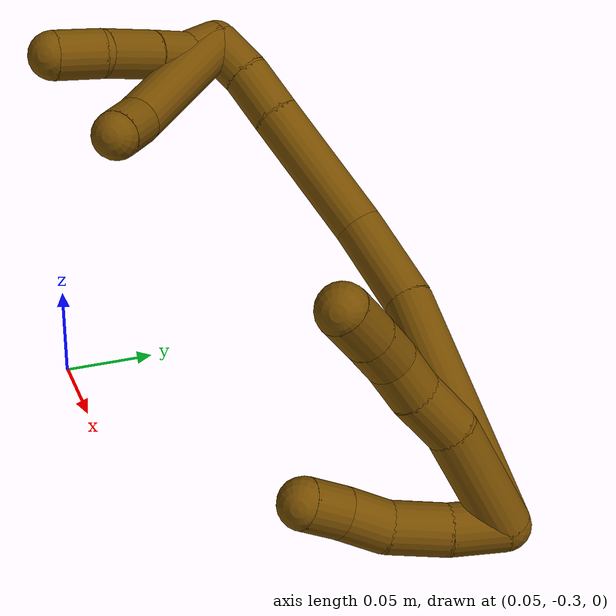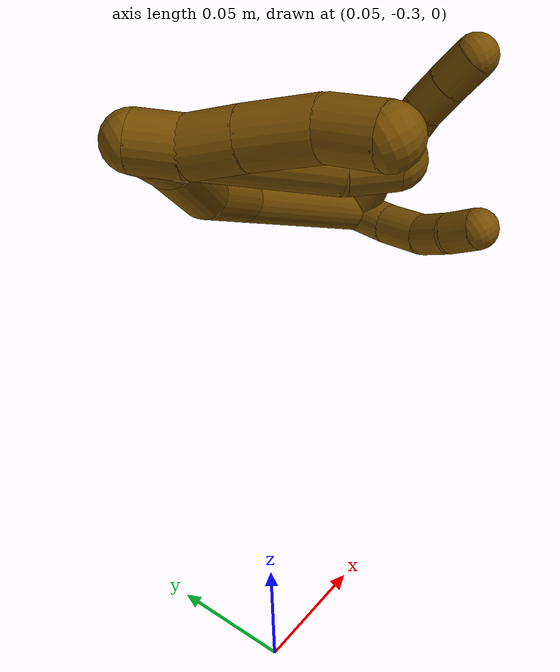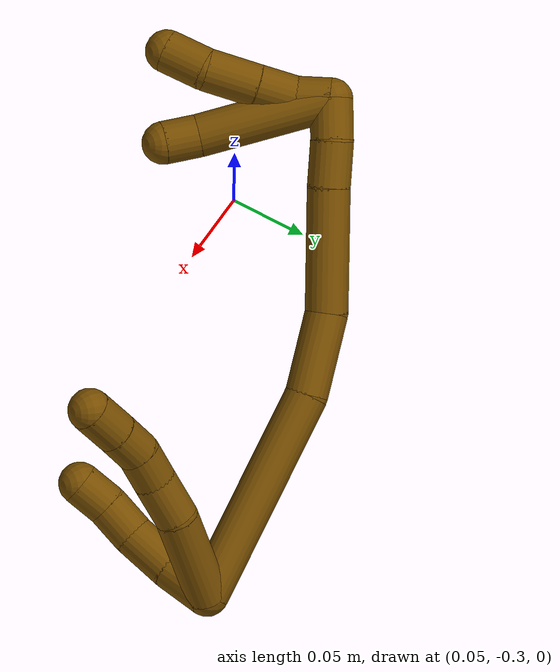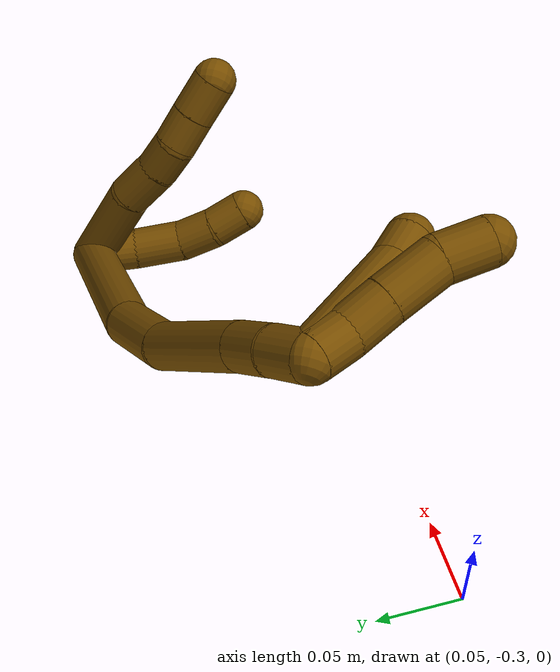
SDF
<sdf version="1.7">
 <world name="default">
  <model name="12">
   <static>0</static>
   <link name="12">
    <collision name="collision-cylinder-e_1_2_8">
     <pose>-0.02649 -0.002079 0.012284 0.167688 -1.13117 -0.10659</pose>
     <geometry><cylinder><radius>0.0125</radius><length>0.058547</length></cylinder></geometry>
     <surface>
      <friction><ode><mu>1.16</mu><mu2>1.16</mu2><slip1>0</slip1><slip2>0</slip2></ode></friction>
      <contact><ode><kp>1e+06</kp><kd>1</kd><max_vel>0</max_vel><min_depth>0.001</min_depth></ode></contact>
     </surface>
    </collision>
    <visual name="visual-cylinder-e_1_2_8">
     <pose>-0.02649 -0.002079 0.012284 0.167688 -1.13117 -0.10659</pose>
     <geometry><cylinder><radius>0.0125</radius><length>0.058547</length></cylinder></geometry>
     <material><ambient>0.466667 0.301961 0 1</ambient></material>
    </visual>
    <collision name="collision-cylinder-e_2_8_9">
     <pose>-0.064206 -0.008018 0.030923 0.545765 -0.985883 -0.298436</pose>
     <geometry><cylinder><radius>0.0125</radius><length>0.02693</length></cylinder></geometry>
     <surface>
      <friction><ode><mu>1.16</mu><mu2>1.16</mu2><slip1>0</slip1><slip2>0</slip2></ode></friction>
      <contact><ode><kp>1e+06</kp><kd>1</kd><max_vel>0</max_vel><min_depth>0.001</min_depth></ode></contact>
     </surface>
    </collision>
    <visual name="visual-cylinder-e_2_8_9">
     <pose>-0.064206 -0.008018 0.030923 0.545765 -0.985883 -0.298436</pose>
     <geometry><cylinder><radius>0.0125</radius><length>0.02693</length></cylinder></geometry>
     <material><ambient>0.466667 0.301961 0 1</ambient></material>
    </visual>
    <collision name="collision-cylinder-e_3_9_10">
     <pose>-0.084307 -0.013383 0.042688 0.271514 -1.00655 -0.150127</pose>
     <geometry><cylinder><radius>0.0125</radius><length>0.021005</length></cylinder></geometry>
     <surface>
      <friction><ode><mu>1.16</mu><mu2>1.16</mu2><slip1>0</slip1><slip2>0</slip2></ode></friction>
      <contact><ode><kp>1e+06</kp><kd>1</kd><max_vel>0</max_vel><min_depth>0.001</min_depth></ode></contact>
     </surface>
    </collision>
    <visual name="visual-cylinder-e_3_9_10">
     <pose>-0.084307 -0.013383 0.042688 0.271514 -1.00655 -0.150127</pose>
     <geometry><cylinder><radius>0.0125</radius><length>0.021005</length></cylinder></geometry>
     <material><ambient>0.466667 0.301961 0 1</ambient></material>
    </visual>
    <collision name="collision-cylinder-e_4_10_11">
     <pose>-0.100204 -0.01619 0.05541 0.176092 -0.757421 -0.070223</pose>
     <geometry><cylinder><radius>0.0125</radius><length>0.020441</length></cylinder></geometry>
     <surface>
      <friction><ode><mu>1.16</mu><mu2>1.16</mu2><slip1>0</slip1><slip2>0</slip2></ode></friction>
      <contact><ode><kp>1e+06</kp><kd>1</kd><max_vel>0</max_vel><min_depth>0.001</min_depth></ode></contact>
     </surface>
    </collision>
    <visual name="visual-cylinder-e_4_10_11">
     <pose>-0.100204 -0.01619 0.05541 0.176092 -0.757421 -0.070223</pose>
     <geometry><cylinder><radius>0.0125</radius><length>0.020441</length></cylinder></geometry>
     <material><ambient>0.466667 0.301961 0 1</ambient></material>
    </visual>
    <collision name="collision-cylinder-e_5_11_6">
     <pose>-0.114942 -0.019164 0.071136 0.196231 -0.732488 -0.075471</pose>
     <geometry><cylinder><radius>0.0125</radius><length>0.023077</length></cylinder></geometry>
     <surface>
      <friction><ode><mu>1.16</mu><mu2>1.16</mu2><slip1>0</slip1><slip2>0</slip2></ode></friction>
      <contact><ode><kp>1e+06</kp><kd>1</kd><max_vel>0</max_vel><min_depth>0.001</min_depth></ode></contact>
     </surface>
    </collision>
    <visual name="visual-cylinder-e_5_11_6">
     <pose>-0.114942 -0.019164 0.071136 0.196231 -0.732488 -0.075471</pose>
     <geometry><cylinder><radius>0.0125</radius><length>0.023077</length></cylinder></geometry>
     <material><ambient>0.466667 0.301961 0 1</ambient></material>
    </visual>
    <collision name="collision-cylinder-e_1_2_12">
     <pose>-0.003889 -0.012055 0.005251 1.15996 -0.287542 -0.189123</pose>
     <geometry><cylinder><radius>0.0125</radius><length>0.027423</length></cylinder></geometry>
     <surface>
      <friction><ode><mu>1.16</mu><mu2>1.16</mu2><slip1>0</slip1><slip2>0</slip2></ode></friction>
      <contact><ode><kp>1e+06</kp><kd>1</kd><max_vel>0</max_vel><min_depth>0.001</min_depth></ode></contact>
     </surface>
    </collision>
    <visual name="visual-cylinder-e_1_2_12">
     <pose>-0.003889 -0.012055 0.005251 1.15996 -0.287542 -0.189123</pose>
     <geometry><cylinder><radius>0.0125</radius><length>0.027423</length></cylinder></geometry>
     <material><ambient>0.466667 0.301961 0 1</ambient></material>
    </visual>
    <collision name="collision-cylinder-e_2_12_13">
     <pose>-0.013782 -0.036179 0.016095 1.13686 -0.424012 -0.27326</pose>
     <geometry><cylinder><radius>0.0125</radius><length>0.02919</length></cylinder></geometry>
     <surface>
      <friction><ode><mu>1.16</mu><mu2>1.16</mu2><slip1>0</slip1><slip2>0</slip2></ode></friction>
      <contact><ode><kp>1e+06</kp><kd>1</kd><max_vel>0</max_vel><min_depth>0.001</min_depth></ode></contact>
     </surface>
    </collision>
    <visual name="visual-cylinder-e_2_12_13">
     <pose>-0.013782 -0.036179 0.016095 1.13686 -0.424012 -0.27326</pose>
     <geometry><cylinder><radius>0.0125</radius><length>0.02919</length></cylinder></geometry>
     <material><ambient>0.466667 0.301961 0 1</ambient></material>
    </visual>
    <collision name="collision-cylinder-e_3_13_14">
     <pose>-0.026887 -0.055534 0.026805 0.958589 -0.673281 -0.359827</pose>
     <geometry><cylinder><radius>0.0125</radius><length>0.022776</length></cylinder></geometry>
     <surface>
      <friction><ode><mu>1.16</mu><mu2>1.16</mu2><slip1>0</slip1><slip2>0</slip2></ode></friction>
      <contact><ode><kp>1e+06</kp><kd>1</kd><max_vel>0</max_vel><min_depth>0.001</min_depth></ode></contact>
     </surface>
    </collision>
    <visual name="visual-cylinder-e_3_13_14">
     <pose>-0.026887 -0.055534 0.026805 0.958589 -0.673281 -0.359827</pose>
     <geometry><cylinder><radius>0.0125</radius><length>0.022776</length></cylinder></geometry>
     <material><ambient>0.466667 0.301961 0 1</ambient></material>
    </visual>
    <collision name="collision-cylinder-e_4_14_5">
     <pose>-0.039618 -0.068764 0.03818 0.759599 -0.577942 -0.236242</pose>
     <geometry><cylinder><radius>0.0125</radius><length>0.020611</length></cylinder></geometry>
     <surface>
      <friction><ode><mu>1.16</mu><mu2>1.16</mu2><slip1>0</slip1><slip2>0</slip2></ode></friction>
      <contact><ode><kp>1e+06</kp><kd>1</kd><max_vel>0</max_vel><min_depth>0.001</min_depth></ode></contact>
     </surface>
    </collision>
    <visual name="visual-cylinder-e_4_14_5">
     <pose>-0.039618 -0.068764 0.03818 0.759599 -0.577942 -0.236242</pose>
     <geometry><cylinder><radius>0.0125</radius><length>0.020611</length></cylinder></geometry>
     <material><ambient>0.466667 0.301961 0 1</ambient></material>
    </visual>
    <collision name="collision-cylinder-e_1_2_15">
     <pose>-0.053946 -0.008349 -0.033454 2.89702 -1.00208 -2.70009</pose>
     <geometry><cylinder><radius>0.0125</radius><length>0.128048</length></cylinder></geometry>
     <surface>
      <friction><ode><mu>1.16</mu><mu2>1.16</mu2><slip1>0</slip1><slip2>0</slip2></ode></friction>
      <contact><ode><kp>1e+06</kp><kd>1</kd><max_vel>0</max_vel><min_depth>0.001</min_depth></ode></contact>
     </surface>
    </collision>
    <visual name="visual-cylinder-e_1_2_15">
     <pose>-0.053946 -0.008349 -0.033454 2.89702 -1.00208 -2.70009</pose>
     <geometry><cylinder><radius>0.0125</radius><length>0.128048</length></cylinder></geometry>
     <material><ambient>0.466667 0.301961 0 1</ambient></material>
    </visual>
    <collision name="collision-cylinder-e_2_15_16">
     <pose>-0.129518 -0.023556 -0.07587 2.4884 -1.08986 -2.12242</pose>
     <geometry><cylinder><radius>0.0125</radius><length>0.048785</length></cylinder></geometry>
     <surface>
      <friction><ode><mu>1.16</mu><mu2>1.16</mu2><slip1>0</slip1><slip2>0</slip2></ode></friction>
      <contact><ode><kp>1e+06</kp><kd>1</kd><max_vel>0</max_vel><min_depth>0.001</min_depth></ode></contact>
     </surface>
    </collision>
    <visual name="visual-cylinder-e_2_15_16">
     <pose>-0.129518 -0.023556 -0.07587 2.4884 -1.08986 -2.12242</pose>
     <geometry><cylinder><radius>0.0125</radius><length>0.048785</length></cylinder></geometry>
     <material><ambient>0.466667 0.301961 0 1</ambient></material>
    </visual>
    <collision name="collision-cylinder-e_3_16_17">
     <pose>-0.185304 -0.041389 -0.088615 1.9028 -1.24318 -1.57543</pose>
     <geometry><cylinder><radius>0.0125</radius><length>0.07216</length></cylinder></geometry>
     <surface>
      <friction><ode><mu>1.16</mu><mu2>1.16</mu2><slip1>0</slip1><slip2>0</slip2></ode></friction>
      <contact><ode><kp>1e+06</kp><kd>1</kd><max_vel>0</max_vel><min_depth>0.001</min_depth></ode></contact>
     </surface>
    </collision>
    <visual name="visual-cylinder-e_3_16_17">
     <pose>-0.185304 -0.041389 -0.088615 1.9028 -1.24318 -1.57543</pose>
     <geometry><cylinder><radius>0.0125</radius><length>0.07216</length></cylinder></geometry>
     <material><ambient>0.466667 0.301961 0 1</ambient></material>
    </visual>
    <collision name="collision-cylinder-e_4_17_18">
     <pose>-0.232125 -0.056427 -0.094687 2.08379 -1.21803 -1.74666</pose>
     <geometry><cylinder><radius>0.0125</radius><length>0.026983</length></cylinder></geometry>
     <surface>
      <friction><ode><mu>1.16</mu><mu2>1.16</mu2><slip1>0</slip1><slip2>0</slip2></ode></friction>
      <contact><ode><kp>1e+06</kp><kd>1</kd><max_vel>0</max_vel><min_depth>0.001</min_depth></ode></contact>
     </surface>
    </collision>
    <visual name="visual-cylinder-e_4_17_18">
     <pose>-0.232125 -0.056427 -0.094687 2.08379 -1.21803 -1.74666</pose>
     <geometry><cylinder><radius>0.0125</radius><length>0.026983</length></cylinder></geometry>
     <material><ambient>0.466667 0.301961 0 1</ambient></material>
    </visual>
    <collision name="collision-cylinder-e_5_18_1">
     <pose>-0.255416 -0.065718 -0.098962 1.93382 -1.08629 -1.4378</pose>
     <geometry><cylinder><radius>0.0125</radius><length>0.024025</length></cylinder></geometry>
     <surface>
      <friction><ode><mu>1.16</mu><mu2>1.16</mu2><slip1>0</slip1><slip2>0</slip2></ode></friction>
      <contact><ode><kp>1e+06</kp><kd>1</kd><max_vel>0</max_vel><min_depth>0.001</min_depth></ode></contact>
     </surface>
    </collision>
    <visual name="visual-cylinder-e_5_18_1">
     <pose>-0.255416 -0.065718 -0.098962 1.93382 -1.08629 -1.4378</pose>
     <geometry><cylinder><radius>0.0125</radius><length>0.024025</length></cylinder></geometry>
     <material><ambient>0.466667 0.301961 0 1</ambient></material>
    </visual>
    <collision name="collision-cylinder-e_1_1_19">
     <pose>-0.265125 -0.077602 -0.092932 0.692706 0.088148 0.03183</pose>
     <geometry><cylinder><radius>0.0125</radius><length>0.020916</length></cylinder></geometry>
     <surface>
      <friction><ode><mu>1.16</mu><mu2>1.16</mu2><slip1>0</slip1><slip2>0</slip2></ode></friction>
      <contact><ode><kp>1e+06</kp><kd>1</kd><max_vel>0</max_vel><min_depth>0.001</min_depth></ode></contact>
     </surface>
    </collision>
    <visual name="visual-cylinder-e_1_1_19">
     <pose>-0.265125 -0.077602 -0.092932 0.692706 0.088148 0.03183</pose>
     <geometry><cylinder><radius>0.0125</radius><length>0.020916</length></cylinder></geometry>
     <material><ambient>0.466667 0.301961 0 1</ambient></material>
    </visual>
    <collision name="collision-cylinder-e_2_19_20">
     <pose>-0.266726 -0.090476 -0.075395 0.578864 -0.218181 -0.065209</pose>
     <geometry><cylinder><radius>0.0125</radius><length>0.023299</length></cylinder></geometry>
     <surface>
      <friction><ode><mu>1.16</mu><mu2>1.16</mu2><slip1>0</slip1><slip2>0</slip2></ode></friction>
      <contact><ode><kp>1e+06</kp><kd>1</kd><max_vel>0</max_vel><min_depth>0.001</min_depth></ode></contact>
     </surface>
    </collision>
    <visual name="visual-cylinder-e_2_19_20">
     <pose>-0.266726 -0.090476 -0.075395 0.578864 -0.218181 -0.065209</pose>
     <geometry><cylinder><radius>0.0125</radius><length>0.023299</length></cylinder></geometry>
     <material><ambient>0.466667 0.301961 0 1</ambient></material>
    </visual>
    <collision name="collision-cylinder-e_3_20_21">
     <pose>-0.272521 -0.105412 -0.053639 0.618836 -0.21459 -0.068839</pose>
     <geometry><cylinder><radius>0.0125</radius><length>0.030748</length></cylinder></geometry>
     <surface>
      <friction><ode><mu>1.16</mu><mu2>1.16</mu2><slip1>0</slip1><slip2>0</slip2></ode></friction>
      <contact><ode><kp>1e+06</kp><kd>1</kd><max_vel>0</max_vel><min_depth>0.001</min_depth></ode></contact>
     </surface>
    </collision>
    <visual name="visual-cylinder-e_3_20_21">
     <pose>-0.272521 -0.105412 -0.053639 0.618836 -0.21459 -0.068839</pose>
     <geometry><cylinder><radius>0.0125</radius><length>0.030748</length></cylinder></geometry>
     <material><ambient>0.466667 0.301961 0 1</ambient></material>
    </visual>
    <collision name="collision-cylinder-e_4_21_4">
     <pose>-0.27878 -0.123784 -0.034019 0.91804 -0.240795 -0.119444</pose>
     <geometry><cylinder><radius>0.0125</radius><length>0.025037</length></cylinder></geometry>
     <surface>
      <friction><ode><mu>1.16</mu><mu2>1.16</mu2><slip1>0</slip1><slip2>0</slip2></ode></friction>
      <contact><ode><kp>1e+06</kp><kd>1</kd><max_vel>0</max_vel><min_depth>0.001</min_depth></ode></contact>
     </surface>
    </collision>
    <visual name="visual-cylinder-e_4_21_4">
     <pose>-0.27878 -0.123784 -0.034019 0.91804 -0.240795 -0.119444</pose>
     <geometry><cylinder><radius>0.0125</radius><length>0.025037</length></cylinder></geometry>
     <material><ambient>0.466667 0.301961 0 1</ambient></material>
    </visual>
    <collision name="collision-cylinder-e_1_1_22">
     <pose>-0.252035 -0.089231 -0.068676 0.515421 0.36115 0.096163</pose>
     <geometry><cylinder><radius>0.0125</radius><length>0.079298</length></cylinder></geometry>
     <surface>
      <friction><ode><mu>1.16</mu><mu2>1.16</mu2><slip1>0</slip1><slip2>0</slip2></ode></friction>
      <contact><ode><kp>1e+06</kp><kd>1</kd><max_vel>0</max_vel><min_depth>0.001</min_depth></ode></contact>
     </surface>
    </collision>
    <visual name="visual-cylinder-e_1_1_22">
     <pose>-0.252035 -0.089231 -0.068676 0.515421 0.36115 0.096163</pose>
     <geometry><cylinder><radius>0.0125</radius><length>0.079298</length></cylinder></geometry>
     <material><ambient>0.466667 0.301961 0 1</ambient></material>
    </visual>
    <collision name="collision-cylinder-e_2_22_3">
     <pose>-0.235746 -0.111034 -0.02694 0.356146 0.221982 0.040112</pose>
     <geometry><cylinder><radius>0.0125</radius><length>0.020702</length></cylinder></geometry>
     <surface>
      <friction><ode><mu>1.16</mu><mu2>1.16</mu2><slip1>0</slip1><slip2>0</slip2></ode></friction>
      <contact><ode><kp>1e+06</kp><kd>1</kd><max_vel>0</max_vel><min_depth>0.001</min_depth></ode></contact>
     </surface>
    </collision>
    <visual name="visual-cylinder-e_2_22_3">
     <pose>-0.235746 -0.111034 -0.02694 0.356146 0.221982 0.040112</pose>
     <geometry><cylinder><radius>0.0125</radius><length>0.020702</length></cylinder></geometry>
     <material><ambient>0.466667 0.301961 0 1</ambient></material>
    </visual>
    <collision name="collision-sphere-3">
     <pose>-0.233468 -0.114554 -0.017476 0 -0 0</pose>
     <geometry><sphere><radius>0.0125</radius></sphere></geometry>
     <surface>
      <friction><ode><mu>1.16</mu><mu2>1.16</mu2><slip1>0</slip1><slip2>0</slip2></ode></friction>
      <contact><ode><kp>1e+06</kp><kd>1</kd><max_vel>0</max_vel><min_depth>0.001</min_depth></ode></contact>
     </surface>
    </collision>
    <visual name="visual-sphere-3">
     <pose>-0.233468 -0.114554 -0.017476 0 -0 0</pose>
     <geometry><sphere><radius>0.0125</radius></sphere></geometry>
     <material><ambient>0.466667 0.301961 0 1</ambient></material>
    </visual>
    <collision name="collision-sphere-22">
     <pose>-0.238025 -0.107513 -0.036403 0 -0 0</pose>
     <geometry><sphere><radius>0.0125</radius></sphere></geometry>
     <surface>
      <friction><ode><mu>1.16</mu><mu2>1.16</mu2><slip1>0</slip1><slip2>0</slip2></ode></friction>
      <contact><ode><kp>1e+06</kp><kd>1</kd><max_vel>0</max_vel><min_depth>0.001</min_depth></ode></contact>
     </surface>
    </collision>
    <visual name="visual-sphere-22">
     <pose>-0.238025 -0.107513 -0.036403 0 -0 0</pose>
     <geometry><sphere><radius>0.0125</radius></sphere></geometry>
     <material><ambient>0.466667 0.301961 0 1</ambient></material>
    </visual>
    <collision name="collision-sphere-4">
     <pose>-0.281766 -0.133442 -0.026635 0 -0 0</pose>
     <geometry><sphere><radius>0.0125</radius></sphere></geometry>
     <surface>
      <friction><ode><mu>1.16</mu><mu2>1.16</mu2><slip1>0</slip1><slip2>0</slip2></ode></friction>
      <contact><ode><kp>1e+06</kp><kd>1</kd><max_vel>0</max_vel><min_depth>0.001</min_depth></ode></contact>
     </surface>
    </collision>
    <visual name="visual-sphere-4">
     <pose>-0.281766 -0.133442 -0.026635 0 -0 0</pose>
     <geometry><sphere><radius>0.0125</radius></sphere></geometry>
     <material><ambient>0.466667 0.301961 0 1</ambient></material>
    </visual>
    <collision name="collision-sphere-21">
     <pose>-0.275795 -0.114126 -0.041403 0 -0 0</pose>
     <geometry><sphere><radius>0.0125</radius></sphere></geometry>
     <surface>
      <friction><ode><mu>1.16</mu><mu2>1.16</mu2><slip1>0</slip1><slip2>0</slip2></ode></friction>
      <contact><ode><kp>1e+06</kp><kd>1</kd><max_vel>0</max_vel><min_depth>0.001</min_depth></ode></contact>
     </surface>
    </collision>
    <visual name="visual-sphere-21">
     <pose>-0.275795 -0.114126 -0.041403 0 -0 0</pose>
     <geometry><sphere><radius>0.0125</radius></sphere></geometry>
     <material><ambient>0.466667 0.301961 0 1</ambient></material>
    </visual>
    <collision name="collision-sphere-20">
     <pose>-0.269247 -0.096698 -0.065875 0 -0 0</pose>
     <geometry><sphere><radius>0.0125</radius></sphere></geometry>
     <surface>
      <friction><ode><mu>1.16</mu><mu2>1.16</mu2><slip1>0</slip1><slip2>0</slip2></ode></friction>
      <contact><ode><kp>1e+06</kp><kd>1</kd><max_vel>0</max_vel><min_depth>0.001</min_depth></ode></contact>
     </surface>
    </collision>
    <visual name="visual-sphere-20">
     <pose>-0.269247 -0.096698 -0.065875 0 -0 0</pose>
     <geometry><sphere><radius>0.0125</radius></sphere></geometry>
     <material><ambient>0.466667 0.301961 0 1</ambient></material>
    </visual>
    <collision name="collision-sphere-6">
     <pose>-0.122658 -0.020837 0.07955 0 -0 0</pose>
     <geometry><sphere><radius>0.0125</radius></sphere></geometry>
     <surface>
      <friction><ode><mu>1.16</mu><mu2>1.16</mu2><slip1>0</slip1><slip2>0</slip2></ode></friction>
      <contact><ode><kp>1e+06</kp><kd>1</kd><max_vel>0</max_vel><min_depth>0.001</min_depth></ode></contact>
     </surface>
    </collision>
    <visual name="visual-sphere-6">
     <pose>-0.122658 -0.020837 0.07955 0 -0 0</pose>
     <geometry><sphere><radius>0.0125</radius></sphere></geometry>
     <material><ambient>0.466667 0.301961 0 1</ambient></material>
    </visual>
    <collision name="collision-sphere-11">
     <pose>-0.107226 -0.017491 0.062722 0 -0 0</pose>
     <geometry><sphere><radius>0.0125</radius></sphere></geometry>
     <surface>
      <friction><ode><mu>1.16</mu><mu2>1.16</mu2><slip1>0</slip1><slip2>0</slip2></ode></friction>
      <contact><ode><kp>1e+06</kp><kd>1</kd><max_vel>0</max_vel><min_depth>0.001</min_depth></ode></contact>
     </surface>
    </collision>
    <visual name="visual-sphere-11">
     <pose>-0.107226 -0.017491 0.062722 0 -0 0</pose>
     <geometry><sphere><radius>0.0125</radius></sphere></geometry>
     <material><ambient>0.466667 0.301961 0 1</ambient></material>
    </visual>
    <collision name="collision-sphere-10">
     <pose>-0.093182 -0.014889 0.048099 0 -0 0</pose>
     <geometry><sphere><radius>0.0125</radius></sphere></geometry>
     <surface>
      <friction><ode><mu>1.16</mu><mu2>1.16</mu2><slip1>0</slip1><slip2>0</slip2></ode></friction>
      <contact><ode><kp>1e+06</kp><kd>1</kd><max_vel>0</max_vel><min_depth>0.001</min_depth></ode></contact>
     </surface>
    </collision>
    <visual name="visual-sphere-10">
     <pose>-0.093182 -0.014889 0.048099 0 -0 0</pose>
     <geometry><sphere><radius>0.0125</radius></sphere></geometry>
     <material><ambient>0.466667 0.301961 0 1</ambient></material>
    </visual>
    <collision name="collision-sphere-9">
     <pose>-0.075433 -0.011877 0.037277 0 -0 0</pose>
     <geometry><sphere><radius>0.0125</radius></sphere></geometry>
     <surface>
      <friction><ode><mu>1.16</mu><mu2>1.16</mu2><slip1>0</slip1><slip2>0</slip2></ode></friction>
      <contact><ode><kp>1e+06</kp><kd>1</kd><max_vel>0</max_vel><min_depth>0.001</min_depth></ode></contact>
     </surface>
    </collision>
    <visual name="visual-sphere-9">
     <pose>-0.075433 -0.011877 0.037277 0 -0 0</pose>
     <geometry><sphere><radius>0.0125</radius></sphere></geometry>
     <material><ambient>0.466667 0.301961 0 1</ambient></material>
    </visual>
    <collision name="collision-sphere-2">
     <geometry><sphere><radius>0.0125</radius></sphere></geometry>
     <surface>
      <friction><ode><mu>1.16</mu><mu2>1.16</mu2><slip1>0</slip1><slip2>0</slip2></ode></friction>
      <contact><ode><kp>1e+06</kp><kd>1</kd><max_vel>0</max_vel><min_depth>0.001</min_depth></ode></contact>
     </surface>
    </collision>
    <visual name="visual-sphere-2">
     <geometry><sphere><radius>0.0125</radius></sphere></geometry>
     <material><ambient>0.466667 0.301961 0 1</ambient></material>
    </visual>
    <collision name="collision-sphere-19">
     <pose>-0.264204 -0.084254 -0.084916 0 -0 0</pose>
     <geometry><sphere><radius>0.0125</radius></sphere></geometry>
     <surface>
      <friction><ode><mu>1.16</mu><mu2>1.16</mu2><slip1>0</slip1><slip2>0</slip2></ode></friction>
      <contact><ode><kp>1e+06</kp><kd>1</kd><max_vel>0</max_vel><min_depth>0.001</min_depth></ode></contact>
     </surface>
    </collision>
    <visual name="visual-sphere-19">
     <pose>-0.264204 -0.084254 -0.084916 0 -0 0</pose>
     <geometry><sphere><radius>0.0125</radius></sphere></geometry>
     <material><ambient>0.466667 0.301961 0 1</ambient></material>
    </visual>
    <collision name="collision-sphere-8">
     <pose>-0.05298 -0.004159 0.024568 0 -0 0</pose>
     <geometry><sphere><radius>0.0125</radius></sphere></geometry>
     <surface>
      <friction><ode><mu>1.16</mu><mu2>1.16</mu2><slip1>0</slip1><slip2>0</slip2></ode></friction>
      <contact><ode><kp>1e+06</kp><kd>1</kd><max_vel>0</max_vel><min_depth>0.001</min_depth></ode></contact>
     </surface>
    </collision>
    <visual name="visual-sphere-8">
     <pose>-0.05298 -0.004159 0.024568 0 -0 0</pose>
     <geometry><sphere><radius>0.0125</radius></sphere></geometry>
     <material><ambient>0.466667 0.301961 0 1</ambient></material>
    </visual>
    <collision name="collision-sphere-12">
     <pose>-0.007777 -0.024109 0.010503 0 -0 0</pose>
     <geometry><sphere><radius>0.0125</radius></sphere></geometry>
     <surface>
      <friction><ode><mu>1.16</mu><mu2>1.16</mu2><slip1>0</slip1><slip2>0</slip2></ode></friction>
      <contact><ode><kp>1e+06</kp><kd>1</kd><max_vel>0</max_vel><min_depth>0.001</min_depth></ode></contact>
     </surface>
    </collision>
    <visual name="visual-sphere-12">
     <pose>-0.007777 -0.024109 0.010503 0 -0 0</pose>
     <geometry><sphere><radius>0.0125</radius></sphere></geometry>
     <material><ambient>0.466667 0.301961 0 1</ambient></material>
    </visual>
    <collision name="collision-sphere-13">
     <pose>-0.019786 -0.048248 0.021688 0 -0 0</pose>
     <geometry><sphere><radius>0.0125</radius></sphere></geometry>
     <surface>
      <friction><ode><mu>1.16</mu><mu2>1.16</mu2><slip1>0</slip1><slip2>0</slip2></ode></friction>
      <contact><ode><kp>1e+06</kp><kd>1</kd><max_vel>0</max_vel><min_depth>0.001</min_depth></ode></contact>
     </surface>
    </collision>
    <visual name="visual-sphere-13">
     <pose>-0.019786 -0.048248 0.021688 0 -0 0</pose>
     <geometry><sphere><radius>0.0125</radius></sphere></geometry>
     <material><ambient>0.466667 0.301961 0 1</ambient></material>
    </visual>
    <collision name="collision-sphere-14">
     <pose>-0.033988 -0.06282 0.031921 0 -0 0</pose>
     <geometry><sphere><radius>0.0125</radius></sphere></geometry>
     <surface>
      <friction><ode><mu>1.16</mu><mu2>1.16</mu2><slip1>0</slip1><slip2>0</slip2></ode></friction>
      <contact><ode><kp>1e+06</kp><kd>1</kd><max_vel>0</max_vel><min_depth>0.001</min_depth></ode></contact>
     </surface>
    </collision>
    <visual name="visual-sphere-14">
     <pose>-0.033988 -0.06282 0.031921 0 -0 0</pose>
     <geometry><sphere><radius>0.0125</radius></sphere></geometry>
     <material><ambient>0.466667 0.301961 0 1</ambient></material>
    </visual>
    <collision name="collision-sphere-5">
     <pose>-0.045248 -0.074708 0.044439 0 -0 0</pose>
     <geometry><sphere><radius>0.0125</radius></sphere></geometry>
     <surface>
      <friction><ode><mu>1.16</mu><mu2>1.16</mu2><slip1>0</slip1><slip2>0</slip2></ode></friction>
      <contact><ode><kp>1e+06</kp><kd>1</kd><max_vel>0</max_vel><min_depth>0.001</min_depth></ode></contact>
     </surface>
    </collision>
    <visual name="visual-sphere-5">
     <pose>-0.045248 -0.074708 0.044439 0 -0 0</pose>
     <geometry><sphere><radius>0.0125</radius></sphere></geometry>
     <material><ambient>0.466667 0.301961 0 1</ambient></material>
    </visual>
    <collision name="collision-sphere-15">
     <pose>-0.107892 -0.016698 -0.066909 0 -0 0</pose>
     <geometry><sphere><radius>0.0125</radius></sphere></geometry>
     <surface>
      <friction><ode><mu>1.16</mu><mu2>1.16</mu2><slip1>0</slip1><slip2>0</slip2></ode></friction>
      <contact><ode><kp>1e+06</kp><kd>1</kd><max_vel>0</max_vel><min_depth>0.001</min_depth></ode></contact>
     </surface>
    </collision>
    <visual name="visual-sphere-15">
     <pose>-0.107892 -0.016698 -0.066909 0 -0 0</pose>
     <geometry><sphere><radius>0.0125</radius></sphere></geometry>
     <material><ambient>0.466667 0.301961 0 1</ambient></material>
    </visual>
    <collision name="collision-sphere-16">
     <pose>-0.151143 -0.030413 -0.084831 0 -0 0</pose>
     <geometry><sphere><radius>0.0125</radius></sphere></geometry>
     <surface>
      <friction><ode><mu>1.16</mu><mu2>1.16</mu2><slip1>0</slip1><slip2>0</slip2></ode></friction>
      <contact><ode><kp>1e+06</kp><kd>1</kd><max_vel>0</max_vel><min_depth>0.001</min_depth></ode></contact>
     </surface>
    </collision>
    <visual name="visual-sphere-16">
     <pose>-0.151143 -0.030413 -0.084831 0 -0 0</pose>
     <geometry><sphere><radius>0.0125</radius></sphere></geometry>
     <material><ambient>0.466667 0.301961 0 1</ambient></material>
    </visual>
    <collision name="collision-sphere-17">
     <pose>-0.219464 -0.052366 -0.092399 0 -0 0</pose>
     <geometry><sphere><radius>0.0125</radius></sphere></geometry>
     <surface>
      <friction><ode><mu>1.16</mu><mu2>1.16</mu2><slip1>0</slip1><slip2>0</slip2></ode></friction>
      <contact><ode><kp>1e+06</kp><kd>1</kd><max_vel>0</max_vel><min_depth>0.001</min_depth></ode></contact>
     </surface>
    </collision>
    <visual name="visual-sphere-17">
     <pose>-0.219464 -0.052366 -0.092399 0 -0 0</pose>
     <geometry><sphere><radius>0.0125</radius></sphere></geometry>
     <material><ambient>0.466667 0.301961 0 1</ambient></material>
    </visual>
    <collision name="collision-sphere-18">
     <pose>-0.244786 -0.060488 -0.096975 0 -0 0</pose>
     <geometry><sphere><radius>0.0125</radius></sphere></geometry>
     <surface>
      <friction><ode><mu>1.16</mu><mu2>1.16</mu2><slip1>0</slip1><slip2>0</slip2></ode></friction>
      <contact><ode><kp>1e+06</kp><kd>1</kd><max_vel>0</max_vel><min_depth>0.001</min_depth></ode></contact>
     </surface>
    </collision>
    <visual name="visual-sphere-18">
     <pose>-0.244786 -0.060488 -0.096975 0 -0 0</pose>
     <geometry><sphere><radius>0.0125</radius></sphere></geometry>
     <material><ambient>0.466667 0.301961 0 1</ambient></material>
    </visual>
    <collision name="collision-sphere-1">
     <pose>-0.266045 -0.070949 -0.100948 0 -0 0</pose>
     <geometry><sphere><radius>0.0125</radius></sphere></geometry>
     <surface>
      <friction><ode><mu>1.16</mu><mu2>1.16</mu2><slip1>0</slip1><slip2>0</slip2></ode></friction>
      <contact><ode><kp>1e+06</kp><kd>1</kd><max_vel>0</max_vel><min_depth>0.001</min_depth></ode></contact>
     </surface>
    </collision>
    <visual name="visual-sphere-1">
     <pose>-0.266045 -0.070949 -0.100948 0 -0 0</pose>
     <geometry><sphere><radius>0.0125</radius></sphere></geometry>
     <material><ambient>0.466667 0.301961 0 1</ambient></material>
    </visual>
    <inertial>
     <pose>-0.136896 -0.044284 -0.032377 0 -0 0</pose>
     <mass>0.75</mass>
     <inertia>
      <ixx>-0.000109</ixx>
      <ixy>0</ixy>
      <ixz>0</ixz>
      <iyy>0.000218</iyy>
      <iyz>0</iyz>
      <izz>0.000301</izz>
     </inertia>
    </inertial>
   </link>
   <pose>0.319134 -0.15379 0.04131 0.822619 0.996318 0.361943</pose>
  </model>
 </world>
</sdf>
